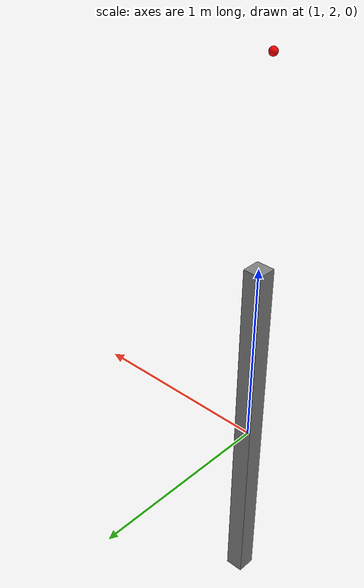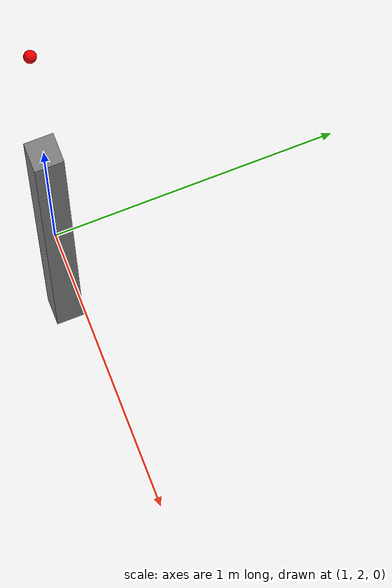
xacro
<?xml version="1.0"?>
<robot name="test_robot">
  <link name="world"/>

  <!-- Expanded pillar -->
  <link name="pillar_link">
    <visual>
      <geometry>
        <box size="0.1 0.1 2.0"/>
      </geometry>
      <material name="gray">
        <color rgba="0.5 0.5 0.5 1"/>
      </material>
    </visual>
    <collision>
      <geometry>
        <box size="0.1 0.1 2.0"/>
      </geometry>
    </collision>
    <inertial>
      <mass value="10.0"/>
      <inertia ixx="0.083333" ixy="0.0" ixz="0.0"
               iyy="0.083333" iyz="0.0"
               izz="0.083333"/>
    </inertial>
  </link>

  <joint name="pillar_joint" type="fixed">
    <parent link="world"/>
    <child link="pillar_link"/>
    <origin xyz="1.0 2.0 0.0" rpy="0 0 0"/>
  </joint>

  <link name="attachment_point">
    <visual>
      <geometry>
        <sphere radius="0.02"/>
      </geometry>
      <material name="red">
        <color rgba="1 0 0 1"/>
      </material>
    </visual>
    <inertial>
      <mass value="0.01"/>
      <inertia ixx="0.0001" ixy="0.0" ixz="0.0"
               iyy="0.0001" iyz="0.0"
               izz="0.0001"/>
    </inertial>
  </link>

  <joint name="attachment_joint" type="fixed">
    <parent link="pillar_link"/>
    <child link="attachment_point"/>
    <origin xyz="0 0 2.0" rpy="0 0 0"/>
  </joint>
</robot>
